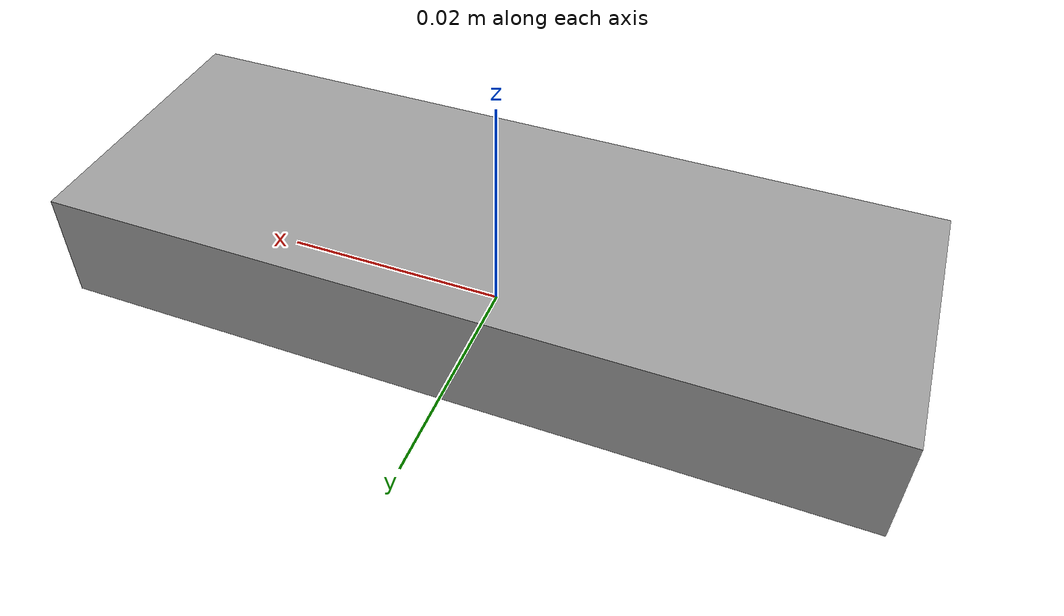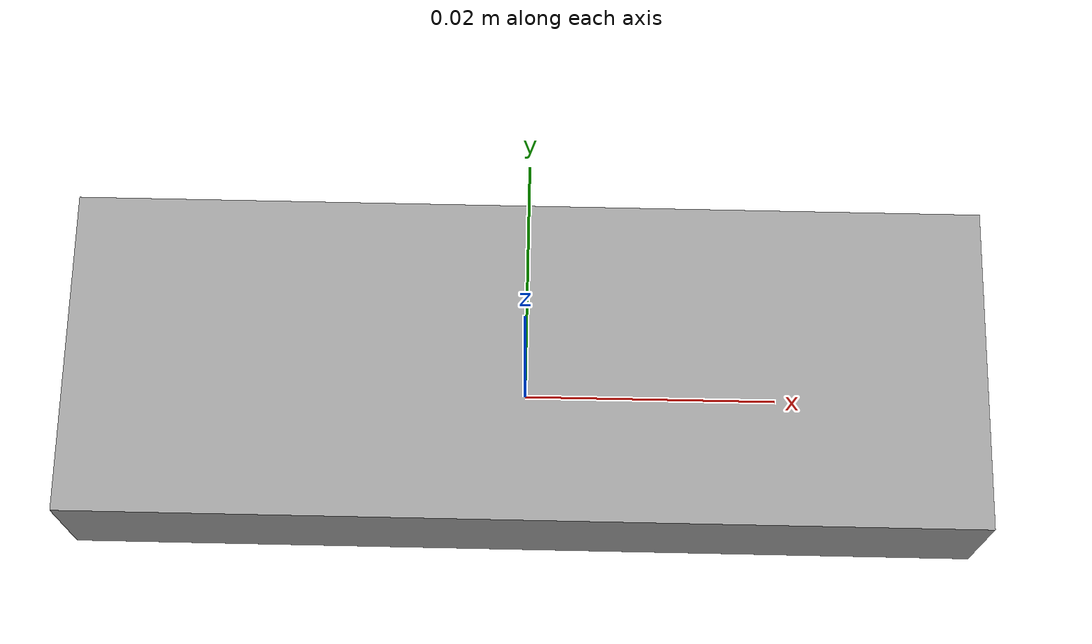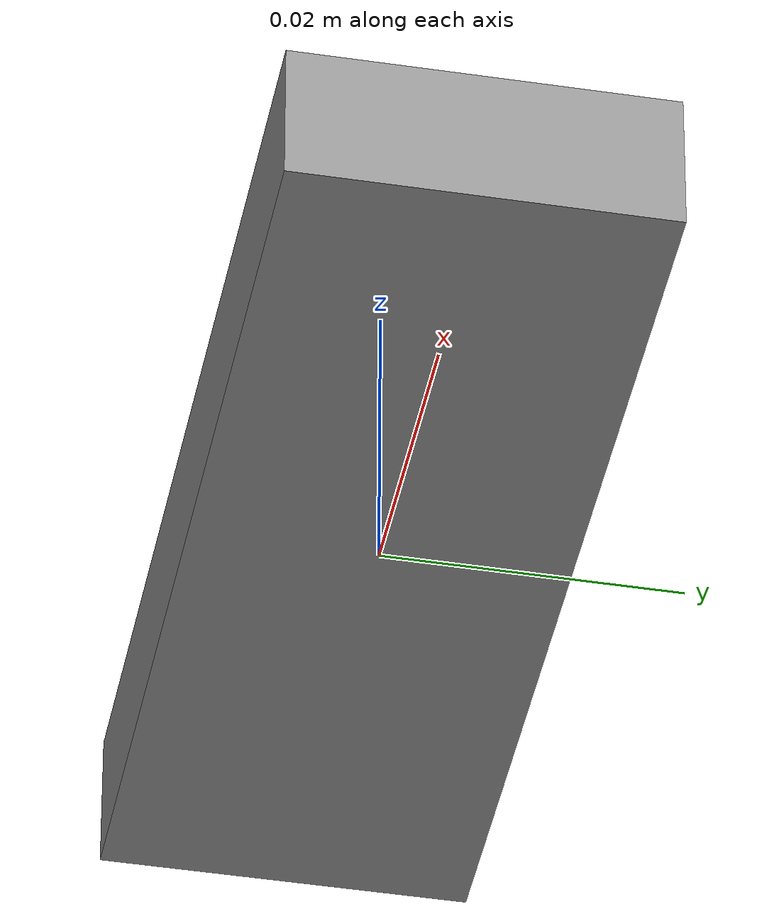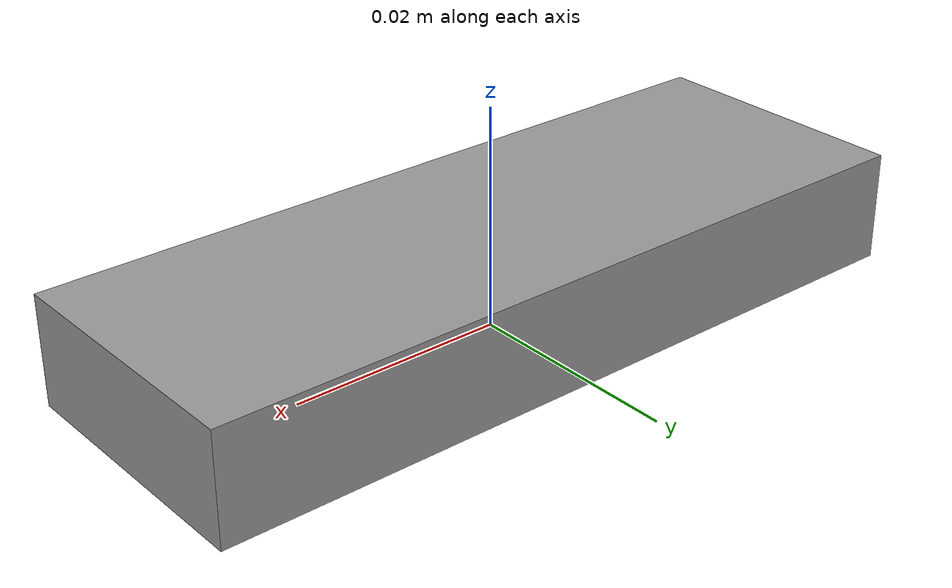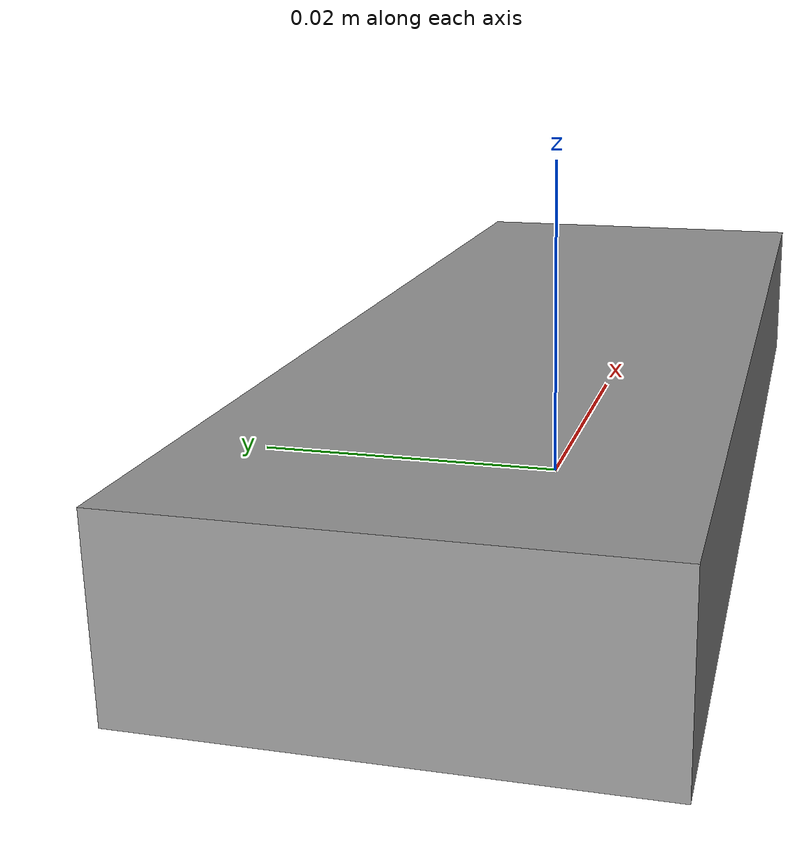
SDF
<?xml version="1.0" ?>
<sdf version="1.5">
  <model name='stone'>
    <pose frame=''>0 0 0 0 0 0</pose>
    <static>false</static>  <!-- mass is ignored for static models -->
    <link name='stone_link'>
      <pose frame=''>0 0 0.005 0 0 0</pose>
      <inertial>
        <mass>0.115</mass>
        <inertia>
          <ixx>6.948e-06</ixx>
          <ixy>0</ixy>
          <ixz>0</ixz>
          <iyy>4.792e-05</iyy>
          <iyz>0</iyz>
          <izz>5.295e-05</izz>
        </inertia>
      </inertial>
      <collision name='collision'>
        <geometry>
          <box>
            <size>0.07 0.025 0.01</size>
          </box>
        </geometry>
        <surface>
          <contact>
            <poissons_ratio>0.15</poissons_ratio>
            <elastic_modulus>8e+10</elastic_modulus>
            <ode>
              <kp>100000</kp>
              <kd>100</kd>
              <max_vel>100</max_vel>
              <min_depth>0.001</min_depth>
            </ode>
          </contact>
          <friction>
            <torsional>
              <coefficient>1</coefficient>
            </torsional>
            <ode>
              <mu>1.0</mu>
              <mu2>1.0</mu2>
              <fdir1>1 0 0</fdir1> <!-- specify in x dir to prevent slipping on mat AND in gripper. Gazebo automatically picks fdir2 as vector normal to applied force on surface -->
            </ode>
          </friction>
          <bounce/>
        </surface>
        <max_contacts>10</max_contacts>
      </collision>
      <visual name='visual'>
        <geometry>
          <box>
            <size>0.07 0.025 0.01</size>
          </box>
        </geometry>
        <material>
          <script>
            <uri>file://media/materials/scripts/gazebo.material</uri>
            <name>Gazebo/Grey</name>
          </script>
        </material>
      </visual>
      <self_collide>0</self_collide>
      <kinematic>0</kinematic>
      <gravity>1</gravity>
    </link>
  </model>
</sdf>
